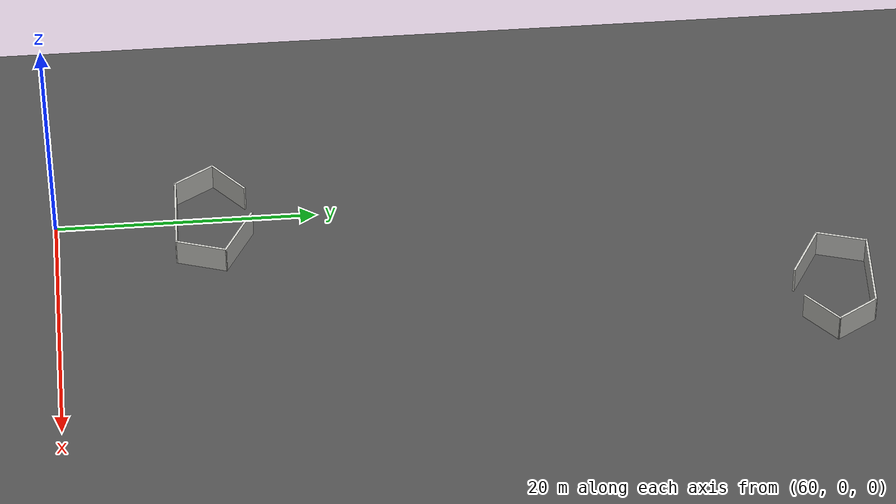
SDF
<sdf version="1.6">
 <world name="default">
  <model name="ground_plane">
   <static>1</static>
   <link name="link">
    <collision name="collision">
     <geometry><plane><normal>0 0 1</normal><size>250 250</size></plane></geometry>
     <surface><friction><ode><mu>100</mu><mu2>50</mu2></ode></friction></surface>
    </collision>
    <visual name="visual">
     <cast_shadows>0</cast_shadows>
     <geometry><plane><normal>0 0 1</normal><size>250 250</size></plane></geometry>
     <material>
      <script><uri>file://media/materials/scripts/gazebo.material</uri><name>Gazebo/Grey</name></script>
     </material>
    </visual>
   </link>
  </model>
  <model name="concrete_room_2">
   <pose>70.989 58.7386 0 0 -0 0</pose>
   <link name="Wall_54">
    <collision name="Wall_54_Collision">
     <geometry><box><size>4.25 0.15 2.5</size></box></geometry>
     <pose>0 0 1.25 0 -0 0</pose>
    </collision>
    <visual name="Wall_54_Visual">
     <pose>0 0 1.25 0 -0 0</pose>
     <geometry><box><size>4.25 0.15 2.5</size></box></geometry>
     <material>
      <script><uri>file://media/materials/scripts/gazebo.material</uri><name>Gazebo/CeilingTiled</name></script>
      <ambient>1 1 1 1</ambient>
     </material>
     <meta><layer>0</layer></meta>
    </visual>
    <pose>-2.48718 -1.85941 0 0 -0 2.61799</pose>
   </link>
   <link name="Wall_55">
    <collision name="Wall_55_Collision">
     <geometry><box><size>4 0.15 2.5</size></box></geometry>
     <pose>0 0 1.25 0 -0 0</pose>
    </collision>
    <visual name="Wall_55_Visual">
     <pose>0 0 1.25 0 -0 0</pose>
     <geometry><box><size>4 0.15 2.5</size></box></geometry>
     <material>
      <script><uri>file://media/materials/scripts/gazebo.material</uri><name>Gazebo/CeilingTiled</name></script>
      <ambient>1 1 1 1</ambient>
     </material>
     <meta><layer>0</layer></meta>
    </visual>
    <pose>-3.76431 1.025 0 0 -0 1.309</pose>
   </link>
   <link name="Wall_56">
    <collision name="Wall_56_Collision">
     <geometry><box><size>6 0.15 2.5</size></box></geometry>
     <pose>0 0 1.25 0 -0 0</pose>
    </collision>
    <visual name="Wall_56_Visual">
     <pose>0 0 1.25 0 -0 0</pose>
     <geometry><box><size>6 0.15 2.5</size></box></geometry>
     <material>
      <script><uri>file://media/materials/scripts/gazebo.material</uri><name>Gazebo/CeilingTiled</name></script>
      <ambient>1 1 1 1</ambient>
     </material>
     <meta><layer>0</layer></meta>
    </visual>
    <pose>-0.34108 2.88441 0 0 -0 0</pose>
   </link>
   <link name="Wall_57">
    <collision name="Wall_57_Collision">
     <geometry><box><size>3.5 0.15 2.5</size></box></geometry>
     <pose>0 0 1.25 0 -0 0</pose>
    </collision>
    <visual name="Wall_57_Visual">
     <pose>0 0 1.25 0 -0 0</pose>
     <geometry><box><size>3.5 0.15 2.5</size></box></geometry>
     <material>
      <script><uri>file://media/materials/scripts/gazebo.material</uri><name>Gazebo/CeilingTiled</name></script>
      <ambient>1 1 1 1</ambient>
     </material>
     <meta><layer>0</layer></meta>
    </visual>
    <pose>3.42142 1.43382 0 0 0 -1.0472</pose>
   </link>
   <link name="Wall_58">
    <collision name="Wall_58_Collision">
     <geometry><box><size>3.5 0.15 2.5</size></box></geometry>
     <pose>0 0 1.25 0 -0 0</pose>
    </collision>
    <visual name="Wall_58_Visual">
     <pose>0 0 1.25 0 -0 0</pose>
     <geometry><box><size>3.5 0.15 2.5</size></box></geometry>
     <material>
      <script><uri>file://media/materials/scripts/gazebo.material</uri><name>Gazebo/CeilingTiled</name></script>
      <ambient>1 1 1 1</ambient>
     </material>
     <meta><layer>0</layer></meta>
    </visual>
    <pose>3.07452 -1.20118 0 0 0 -2.35619</pose>
   </link>
   <static>1</static>
  </model>
  <model name="concrete_room_3">
   <pose>60.8472 12.1561 0 0 -0 3.12365</pose>
   <link name="Wall_54">
    <collision name="Wall_54_Collision">
     <geometry><box><size>4.25 0.15 2.5</size></box></geometry>
     <pose>0 0 1.25 0 -0 0</pose>
    </collision>
    <visual name="Wall_54_Visual">
     <pose>0 0 1.25 0 -0 0</pose>
     <geometry><box><size>4.25 0.15 2.5</size></box></geometry>
     <material>
      <script><uri>file://media/materials/scripts/gazebo.material</uri><name>Gazebo/CeilingTiled</name></script>
      <ambient>1 1 1 1</ambient>
     </material>
     <meta><layer>0</layer></meta>
    </visual>
    <pose>-2.48718 -1.85941 0 0 -0 2.61799</pose>
   </link>
   <link name="Wall_55">
    <collision name="Wall_55_Collision">
     <geometry><box><size>4 0.15 2.5</size></box></geometry>
     <pose>0 0 1.25 0 -0 0</pose>
    </collision>
    <visual name="Wall_55_Visual">
     <pose>0 0 1.25 0 -0 0</pose>
     <geometry><box><size>4 0.15 2.5</size></box></geometry>
     <material>
      <script><uri>file://media/materials/scripts/gazebo.material</uri><name>Gazebo/CeilingTiled</name></script>
      <ambient>1 1 1 1</ambient>
     </material>
     <meta><layer>0</layer></meta>
    </visual>
    <pose>-3.76431 1.025 0 0 -0 1.309</pose>
   </link>
   <link name="Wall_56">
    <collision name="Wall_56_Collision">
     <geometry><box><size>6 0.15 2.5</size></box></geometry>
     <pose>0 0 1.25 0 -0 0</pose>
    </collision>
    <visual name="Wall_56_Visual">
     <pose>0 0 1.25 0 -0 0</pose>
     <geometry><box><size>6 0.15 2.5</size></box></geometry>
     <material>
      <script><uri>file://media/materials/scripts/gazebo.material</uri><name>Gazebo/CeilingTiled</name></script>
      <ambient>1 1 1 1</ambient>
     </material>
     <meta><layer>0</layer></meta>
    </visual>
    <pose>-0.34108 2.88441 0 0 -0 0</pose>
   </link>
   <link name="Wall_57">
    <collision name="Wall_57_Collision">
     <geometry><box><size>3.5 0.15 2.5</size></box></geometry>
     <pose>0 0 1.25 0 -0 0</pose>
    </collision>
    <visual name="Wall_57_Visual">
     <pose>0 0 1.25 0 -0 0</pose>
     <geometry><box><size>3.5 0.15 2.5</size></box></geometry>
     <material>
      <script><uri>file://media/materials/scripts/gazebo.material</uri><name>Gazebo/CeilingTiled</name></script>
      <ambient>1 1 1 1</ambient>
     </material>
     <meta><layer>0</layer></meta>
    </visual>
    <pose>3.42142 1.43382 0 0 0 -1.0472</pose>
   </link>
   <link name="Wall_58">
    <collision name="Wall_58_Collision">
     <geometry><box><size>3.5 0.15 2.5</size></box></geometry>
     <pose>0 0 1.25 0 -0 0</pose>
    </collision>
    <visual name="Wall_58_Visual">
     <pose>0 0 1.25 0 -0 0</pose>
     <geometry><box><size>3.5 0.15 2.5</size></box></geometry>
     <material>
      <script><uri>file://media/materials/scripts/gazebo.material</uri><name>Gazebo/CeilingTiled</name></script>
      <ambient>1 1 1 1</ambient>
     </material>
     <meta><layer>0</layer></meta>
    </visual>
    <pose>3.07452 -1.20118 0 0 0 -2.35619</pose>
   </link>
   <static>1</static>
  </model>
  <model name="asphalt_plane">
   <static>1</static>
   <link name="link">
    <collision name="collision"><geometry><box><size>250 250 0.1</size></box></geometry></collision>
    <visual name="visual">
     <cast_shadows>0</cast_shadows>
     <geometry><box><size>250 250 0.1</size></box></geometry>
     <material>
      <script>
       <uri>model://asphalt_plane/materials/scripts</uri>
       <uri>model://asphalt_plane/materials/textures</uri>
       <name>vrc/asphalt</name>
      </script>
     </material>
    </visual>
   </link>
   <pose>15.141 -2.59476 0 0 -0 0</pose>
  </model>
 </world>
</sdf>
